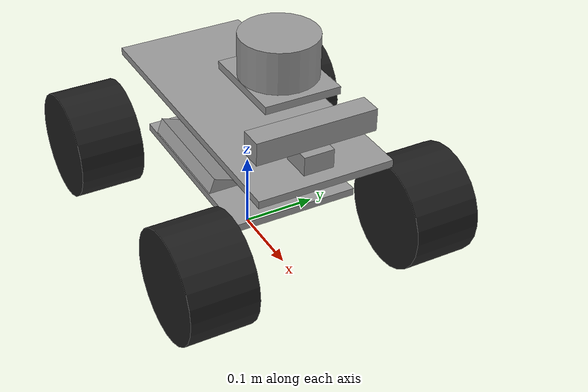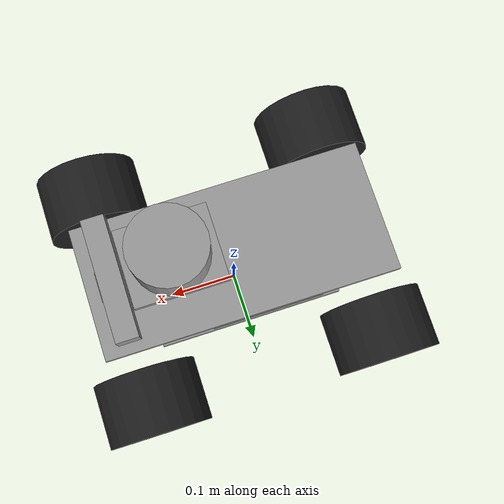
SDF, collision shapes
<sdf version='1.7'>
  <model name='racecar'>
    <link name='base_footprint'>
      <inertial>
        <pose>-0.006516 0 0.104055 0 -0 0</pose>
        <mass>3.802</mass>
        <inertia>
          <ixx>0.0193</ixx>
          <ixy>-3.5325e-22</ixy>
          <ixz>4.72039e-05</ixz>
          <iyy>0.0274234</iyy>
          <iyz>-1.86734e-22</iyz>
          <izz>0.0373702</izz>
        </inertia>
      </inertial>
      <collision name='base_footprint_fixed_joint_lump__chassis_collision'>
        <pose>0 0 0.1025 0 -0 0</pose>
        <geometry>
          <box>
            <size>0.258 0.168 0.01</size>
          </box>
        </geometry>
        <surface>
          <contact>
            <ode/>
          </contact>
          <friction>
            <ode/>
          </friction>
        </surface>
      </collision>
      <collision name='base_footprint_fixed_joint_lump__left_battery_collision_1'>
        <pose>-0.025 0.057319 0.10802 0.349066 -0 0</pose>
        <geometry>
          <box>
            <size>0.16 0.047 0.024</size>
          </box>
        </geometry>
        <surface>
          <contact>
            <ode/>
          </contact>
          <friction>
            <ode/>
          </friction>
        </surface>
      </collision>
      <collision name='base_footprint_fixed_joint_lump__right_battery_collision_2'>
        <pose>-0.025 -0.057319 0.10802 -0.349066 0 0</pose>
        <geometry>
          <box>
            <size>0.16 0.047 0.024</size>
          </box>
        </geometry>
        <surface>
          <contact>
            <ode/>
          </contact>
          <friction>
            <ode/>
          </friction>
        </surface>
      </collision>
      <collision name='base_footprint_fixed_joint_lump__platform_link_collision_3'>
        <pose>0 0 0.1875 0 -0 0</pose>
        <geometry>
          <box>
            <size>0.4 0.18 0.01</size>
          </box>
        </geometry>
        <surface>
          <contact>
            <ode/>
          </contact>
          <friction>
            <ode/>
          </friction>
        </surface>
      </collision>
      <collision name='base_footprint_fixed_joint_lump__camera_link_collision_4'>
        <pose>0.16 0 0.2375 0 -0 0</pose>
        <geometry>
          <box>
            <size>0.03 0.16 0.03</size>
          </box>
        </geometry>
        <surface>
          <contact>
            <ode/>
          </contact>
          <friction>
            <ode/>
          </friction>
        </surface>
      </collision>
      <collision name='base_footprint_fixed_joint_lump__imu_link_collision_5'>
        <pose>0.16 0 0.2025 0 -0 0</pose>
        <geometry>
          <box>
            <size>0.04 0.04 0.03</size>
          </box>
        </geometry>
        <surface>
          <contact>
            <ode/>
          </contact>
          <friction>
            <ode/>
          </friction>
        </surface>
      </collision>
      <collision name='base_footprint_fixed_joint_lump__lidar_platform_link_collision_6'>
        <pose>0.08 0 0.2675 0 -0 0</pose>
        <geometry>
          <box>
            <size>0.12 0.1 0.01</size>
          </box>
        </geometry>
        <surface>
          <contact>
            <ode/>
          </contact>
          <friction>
            <ode/>
          </friction>
        </surface>
      </collision>
      <collision name='base_footprint_fixed_joint_lump__laser_link_collision_7'>
        <pose>0.08 0 0.2975 0 -0 0</pose>
        <geometry>
          <cylinder>
            <length>0.06</length>
            <radius>0.05</radius>
          </cylinder>
        </geometry>
        <surface>
          <contact>
            <ode/>
          </contact>
          <friction>
            <ode/>
          </friction>
        </surface>
      </collision>
      <visual name='base_footprint_fixed_joint_lump__base_link_visual'>
        <pose>0 0 0.1075 0 -0 0</pose>
        <geometry>
          <box>
            <size>0.01 0.01 0.01</size>
          </box>
        </geometry>
        <material>
          <script>
            <name>Gazebo/Grey</name>
            <uri>file://media/materials/scripts/gazebo.material</uri>
          </script>
        </material>
      </visual>
      <visual name='base_footprint_fixed_joint_lump__chassis_visual_1'>
        <pose>0 0 0.1025 0 -0 0</pose>
        <geometry>
          <box>
            <size>0.258 0.168 0.01</size>
          </box>
        </geometry>
        <material>
          <script>
            <name>Gazebo/Grey</name>
            <uri>file://media/materials/scripts/gazebo.material</uri>
          </script>
        </material>
      </visual>
      <visual name='base_footprint_fixed_joint_lump__left_battery_visual_2'>
        <pose>-0.025 0.057319 0.10802 0.349066 -0 0</pose>
        <geometry>
          <box>
            <size>0.16 0.047 0.024</size>
          </box>
        </geometry>
        <material>
          <script>
            <name>Gazebo/Blue</name>
            <uri>file://media/materials/scripts/gazebo.material</uri>
          </script>
        </material>
      </visual>
      <visual name='base_footprint_fixed_joint_lump__right_battery_visual_3'>
        <pose>-0.025 -0.057319 0.10802 -0.349066 0 0</pose>
        <geometry>
          <box>
            <size>0.16 0.047 0.024</size>
          </box>
        </geometry>
        <material>
          <script>
            <name>Gazebo/Blue</name>
            <uri>file://media/materials/scripts/gazebo.material</uri>
          </script>
        </material>
      </visual>
      <visual name='base_footprint_fixed_joint_lump__platform_link_visual_4'>
        <pose>0 0 0.1875 0 -0 0</pose>
        <geometry>
          <box>
            <size>0.4 0.18 0.01</size>
          </box>
        </geometry>
        <material>
          <script>
            <name>Gazebo/Orange</name>
            <uri>file://media/materials/scripts/gazebo.material</uri>
          </script>
        </material>
      </visual>
      <visual name='base_footprint_fixed_joint_lump__camera_link_visual_5'>
        <pose>0.16 0 0.2375 1.57 -0 1.57</pose>
        <geometry>
          <mesh>
            <scale>0.1 0.1 0.1</scale>
            <uri>model://nav2_bringup/meshes/racecar/S1030-0315.dae</uri>
          </mesh>
        </geometry>
        <material>
          <script>
            <name>Gazebo/Black</name>
            <uri>file://media/materials/scripts/gazebo.material</uri>
          </script>
        </material>
      </visual>
      <visual name='base_footprint_fixed_joint_lump__imu_link_visual_6'>
        <pose>0.16 0 0.2025 0 -0 0</pose>
        <geometry>
          <box>
            <size>0.04 0.04 0.03</size>
          </box>
        </geometry>
        <material>
          <script>
            <name>Gazebo/Black</name>
            <uri>file://media/materials/scripts/gazebo.material</uri>
          </script>
        </material>
      </visual>
      <visual name='base_footprint_fixed_joint_lump__lidar_platform_link_visual_7'>
        <pose>0.08 0 0.2675 0 -0 0</pose>
        <geometry>
          <box>
            <size>0.12 0.1 0.01</size>
          </box>
        </geometry>
        <material>
          <script>
            <name>Gazebo/Orange</name>
            <uri>file://media/materials/scripts/gazebo.material</uri>
          </script>
        </material>
      </visual>
      <visual name='base_footprint_fixed_joint_lump__laser_link_visual_8'>
        <pose>0.08 0 0.2975 0 -0 0</pose>
        <geometry>
          <cylinder>
            <length>0.05</length>
            <radius>0.05</radius>
          </cylinder>
        </geometry>
        <material>
          <script>
            <name>Gazebo/Black</name>
            <uri>file://media/materials/scripts/gazebo.material</uri>
          </script>
        </material>
      </visual>
      <sensor name='camera_node' type='camera'>
        <update_rate>30</update_rate>
        <camera name='head'>
          <horizontal_fov>1.39626</horizontal_fov>
          <image>
            <width>1280</width>
            <height>720</height>
            <format>R8G8B8</format>
          </image>
          <clip>
            <near>0.02</near>
            <far>300</far>
          </clip>
          <noise>
            <type>gaussian</type>
            <mean>0</mean>
            <stddev>0.007</stddev>
          </noise>
        </camera>
        <plugin name='gazebo_camera' filename='libgazebo_ros_camera.so'>
          <alwaysOn>1</alwaysOn>
          <updateRate>0.0</updateRate>
          <cameraName>/camera</cameraName>
          <imageTopicName>image_raw</imageTopicName>
          <cameraInfoTopicName>camera_info</cameraInfoTopicName>
          <frameName>camera_link</frameName>
          <hackBaseline>0.07</hackBaseline>
          <distortionK1>0.0</distortionK1>
          <distortionK2>0.0</distortionK2>
          <distortionK3>0.0</distortionK3>
          <distortionT1>0.0</distortionT1>
          <distortionT2>0.0</distortionT2>
        </plugin>
        <pose>0.16 0 0.2375 0 -0 0</pose>
      </sensor>
      <gravity>1</gravity>
      <sensor name='imu_sensor' type='imu'>
        <always_on>1</always_on>
        <update_rate>100</update_rate>
        <visualize>1</visualize>
        <topic>/imu_data</topic>
        <plugin name='imu_plugin' filename='libgazebo_ros_imu_sensor.so'>
          <topicName>/imu_data</topicName>
          <bodyName>imu_link</bodyName>
          <updateRateHZ>100.0</updateRateHZ>
          <gaussianNoise>0.0</gaussianNoise>
          <xyzOffset>0 0 0</xyzOffset>
          <rpyOffset>0 0 0</rpyOffset>
          <frameName>imu_link</frameName>
        </plugin>
        <pose>0.16 0 0.2025 0 -0 0</pose>
      </sensor>
      <sensor name='ls01g' type='ray'>
        <visualize>0</visualize>
        <update_rate>10</update_rate>
        <ray>
          <scan>
            <horizontal>
              <samples>360</samples>
              <resolution>1</resolution>
              <min_angle>-3.14159</min_angle>
              <max_angle>3.14159</max_angle>
            </horizontal>
          </scan>
          <range>
            <min>0.1</min>
            <max>8</max>
            <resolution>0.01</resolution>
          </range>
          <noise>
            <type>gaussian</type>
            <mean>0</mean>
            <stddev>0.01</stddev>
          </noise>
        </ray>
        <plugin name='gazebo_ls01g' filename='libgazebo_ros_laser.so'>
          <topicName>/scan</topicName>
          <frameName>laser_link</frameName>
        </plugin>
        <pose>0.08 0 0.2975 0 -0 0</pose>
      </sensor>
    </link>
    <joint name='left_steering_joint' type='revolute'>
      <pose relative_to='base_footprint'>0.1675 0.1525 0.084 0 -0 0</pose>
      <parent>base_footprint</parent>
      <child>left_front_axle_carrier</child>
      <axis>
        <xyz>0 0 1</xyz>
        <limit>
          <lower>-0.785398</lower>
          <upper>0.785398</upper>
          <effort>0.5649</effort>
          <velocity>4.553</velocity>
        </limit>
        <dynamics>
          <spring_reference>0</spring_reference>
          <spring_stiffness>0</spring_stiffness>
        </dynamics>
      </axis>
    </joint>
    <link name='left_front_axle_carrier'>
      <pose relative_to='left_steering_joint'>0 0 0 0 -0 0</pose>
      <inertial>
        <pose>0 0 0 0 -0 0</pose>
        <mass>0.001</mass>
        <inertia>
          <ixx>0.001</ixx>
          <ixy>0</ixy>
          <ixz>0</ixz>
          <iyy>0.001</iyy>
          <iyz>0</iyz>
          <izz>0.001</izz>
        </inertia>
      </inertial>
    </link>
    <joint name='left_front_axle' type='revolute'>
      <pose relative_to='left_front_axle_carrier'>0 0 0 1.5708 -0 0</pose>
      <parent>left_front_axle_carrier</parent>
      <child>left_front_wheel</child>
      <axis>
        <xyz>0 0 -1</xyz>
        <limit>
          <effort>5.12766</effort>
          <velocity>244.87</velocity>
          <lower>-1e+16</lower>
          <upper>1e+16</upper>
        </limit>
        <dynamics>
          <spring_reference>0</spring_reference>
          <spring_stiffness>0</spring_stiffness>
        </dynamics>
      </axis>
    </joint>
    <link name='left_front_wheel'>
      <pose relative_to='left_front_axle'>0 0 0 0 -0 0</pose>
      <inertial>
        <pose>0 0 0 0 -0 0</pose>
        <mass>0.29</mass>
        <inertia>
          <ixx>0.000746466</ixx>
          <ixy>0</ixy>
          <ixz>0</ixz>
          <iyy>0.000746466</iyy>
          <iyz>0</iyz>
          <izz>0.00111094</izz>
        </inertia>
      </inertial>
      <collision name='left_front_wheel_collision'>
        <pose>0 -0 0 0 -0 0</pose>
        <geometry>
          <cylinder>
            <length>0.0889</length>
            <radius>0.073025</radius>
          </cylinder>
        </geometry>
        <surface>
          <contact>
            <ode/>
          </contact>
          <friction>
            <ode/>
          </friction>
        </surface>
      </collision>
      <visual name='left_front_wheel_visual'>
        <pose>0 -0 0 0 -0 0</pose>
        <geometry>
          <cylinder>
            <length>0.0889</length>
            <radius>0.073025</radius>
          </cylinder>
        </geometry>
        <material>
          <script>
            <name>Gazebo/Black</name>
            <uri>file://media/materials/scripts/gazebo.material</uri>
          </script>
        </material>
      </visual>
    </link>
    <joint name='left_rear_axle' type='revolute'>
      <pose relative_to='base_footprint'>-0.1675 0.1525 0.084 1.5708 -0 0</pose>
      <parent>base_footprint</parent>
      <child>left_rear_wheel</child>
      <axis>
        <xyz>0 0 -1</xyz>
        <limit>
          <effort>5.12766</effort>
          <velocity>244.87</velocity>
          <lower>-1e+16</lower>
          <upper>1e+16</upper>
        </limit>
        <dynamics>
          <spring_reference>0</spring_reference>
          <spring_stiffness>0</spring_stiffness>
        </dynamics>
      </axis>
    </joint>
    <link name='left_rear_wheel'>
      <pose relative_to='left_rear_axle'>0 0 0 0 -0 0</pose>
      <inertial>
        <pose>0 0 0 0 -0 0</pose>
        <mass>0.29</mass>
        <inertia>
          <ixx>0.000746466</ixx>
          <ixy>0</ixy>
          <ixz>0</ixz>
          <iyy>0.000746466</iyy>
          <iyz>0</iyz>
          <izz>0.00111094</izz>
        </inertia>
      </inertial>
      <collision name='left_rear_wheel_collision'>
        <pose>0 -0 0 0 -0 0</pose>
        <geometry>
          <cylinder>
            <length>0.0889</length>
            <radius>0.073025</radius>
          </cylinder>
        </geometry>
        <surface>
          <contact>
            <ode/>
          </contact>
          <friction>
            <ode/>
          </friction>
        </surface>
      </collision>
      <visual name='left_rear_wheel_visual'>
        <pose>0 -0 0 0 -0 0</pose>
        <geometry>
          <cylinder>
            <length>0.0889</length>
            <radius>0.073025</radius>
          </cylinder>
        </geometry>
        <material>
          <script>
            <name>Gazebo/Black</name>
            <uri>file://media/materials/scripts/gazebo.material</uri>
          </script>
        </material>
      </visual>
    </link>
    <joint name='right_steering_joint' type='revolute'>
      <pose relative_to='base_footprint'>0.1675 -0.1525 0.084 0 -0 0</pose>
      <parent>base_footprint</parent>
      <child>right_front_axle_carrier</child>
      <axis>
        <xyz>0 0 1</xyz>
        <limit>
          <lower>-0.785398</lower>
          <upper>0.785398</upper>
          <effort>0.5649</effort>
          <velocity>4.553</velocity>
        </limit>
        <dynamics>
          <spring_reference>0</spring_reference>
          <spring_stiffness>0</spring_stiffness>
        </dynamics>
      </axis>
    </joint>
    <link name='right_front_axle_carrier'>
      <pose relative_to='right_steering_joint'>0 0 0 0 -0 0</pose>
      <inertial>
        <pose>0 0 0 0 -0 0</pose>
        <mass>0.001</mass>
        <inertia>
          <ixx>0.001</ixx>
          <ixy>0</ixy>
          <ixz>0</ixz>
          <iyy>0.001</iyy>
          <iyz>0</iyz>
          <izz>0.001</izz>
        </inertia>
      </inertial>
    </link>
    <joint name='right_front_axle' type='revolute'>
      <pose relative_to='right_front_axle_carrier'>0 0 0 1.5708 -0 0</pose>
      <parent>right_front_axle_carrier</parent>
      <child>right_front_wheel</child>
      <axis>
        <xyz>0 0 -1</xyz>
        <limit>
          <effort>5.12766</effort>
          <velocity>244.87</velocity>
          <lower>-1e+16</lower>
          <upper>1e+16</upper>
        </limit>
        <dynamics>
          <spring_reference>0</spring_reference>
          <spring_stiffness>0</spring_stiffness>
        </dynamics>
      </axis>
    </joint>
    <link name='right_front_wheel'>
      <pose relative_to='right_front_axle'>0 0 0 0 -0 0</pose>
      <inertial>
        <pose>0 0 0 0 -0 0</pose>
        <mass>0.29</mass>
        <inertia>
          <ixx>0.000746466</ixx>
          <ixy>0</ixy>
          <ixz>0</ixz>
          <iyy>0.000746466</iyy>
          <iyz>0</iyz>
          <izz>0.00111094</izz>
        </inertia>
      </inertial>
      <collision name='right_front_wheel_collision'>
        <pose>0 0 0 0 -0 0</pose>
        <geometry>
          <cylinder>
            <length>0.0889</length>
            <radius>0.073025</radius>
          </cylinder>
        </geometry>
        <surface>
          <contact>
            <ode/>
          </contact>
          <friction>
            <ode/>
          </friction>
        </surface>
      </collision>
      <visual name='right_front_wheel_visual'>
        <pose>0 0 0 0 -0 0</pose>
        <geometry>
          <cylinder>
            <length>0.0889</length>
            <radius>0.073025</radius>
          </cylinder>
        </geometry>
        <material>
          <script>
            <name>Gazebo/Black</name>
            <uri>file://media/materials/scripts/gazebo.material</uri>
          </script>
        </material>
      </visual>
    </link>
    <joint name='right_rear_axle' type='revolute'>
      <pose relative_to='base_footprint'>-0.1675 -0.1525 0.084 1.5708 -0 0</pose>
      <parent>base_footprint</parent>
      <child>right_rear_wheel</child>
      <axis>
        <xyz>0 0 -1</xyz>
        <limit>
          <effort>5.12766</effort>
          <velocity>244.87</velocity>
          <lower>-1e+16</lower>
          <upper>1e+16</upper>
        </limit>
        <dynamics>
          <spring_reference>0</spring_reference>
          <spring_stiffness>0</spring_stiffness>
        </dynamics>
      </axis>
    </joint>
    <link name='right_rear_wheel'>
      <pose relative_to='right_rear_axle'>0 0 0 0 -0 0</pose>
      <inertial>
        <pose>0 0 0 0 -0 0</pose>
        <mass>0.29</mass>
        <inertia>
          <ixx>0.000746466</ixx>
          <ixy>0</ixy>
          <ixz>0</ixz>
          <iyy>0.000746466</iyy>
          <iyz>0</iyz>
          <izz>0.00111094</izz>
        </inertia>
      </inertial>
      <collision name='right_rear_wheel_collision'>
        <pose>0 0 0 0 -0 0</pose>
        <geometry>
          <cylinder>
            <length>0.0889</length>
            <radius>0.073025</radius>
          </cylinder>
        </geometry>
        <surface>
          <contact>
            <ode/>
          </contact>
          <friction>
            <ode/>
          </friction>
        </surface>
      </collision>
      <visual name='right_rear_wheel_visual'>
        <pose>0 0 0 0 -0 0</pose>
        <geometry>
          <cylinder>
            <length>0.0889</length>
            <radius>0.073025</radius>
          </cylinder>
        </geometry>
        <material>
          <script>
            <name>Gazebo/Black</name>
            <uri>file://media/materials/scripts/gazebo.material</uri>
          </script>
        </material>
      </visual>
    </link>
  </model>
</sdf>
